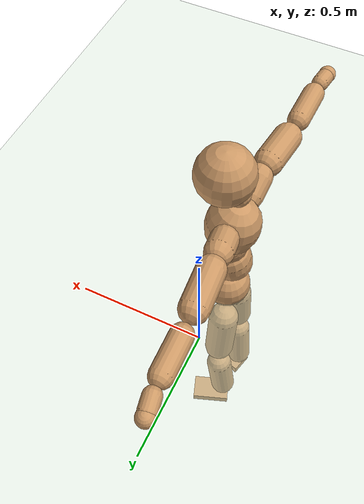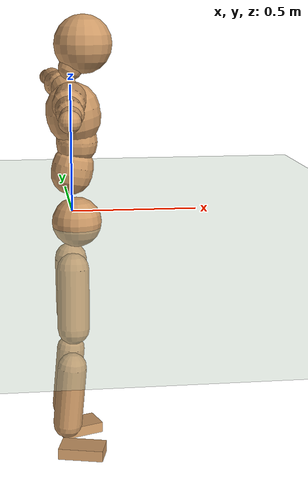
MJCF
<mujoco model="humanoid">
  <compiler coordinate="local" angle="radian"/>
  <default>
    <joint damping="0.0" armature="0.01" stiffness="0.0" limited="true"/>
    <geom conaffinity="1" condim="3" contype="7" margin="0.001" rgba="0.8 0.6 .4 1"/>
  </default>
  <asset>
    <texture type="skybox" builtin="gradient" rgb1=".4 .5 .6" rgb2="0 0 0" width="100" height="100"/>
    <texture builtin="flat" height="1278" mark="cross" markrgb="1 1 1" name="texgeom" random="0.01" rgb1="0.8 0.6 0.4" rgb2="0.8 0.6 0.4" type="cube" width="127"/>
    <texture builtin="checker" height="100" name="texplane" rgb1="0 0 0" rgb2="0.8 0.8 0.8" type="2d" width="100"/>
    <material name="MatPlane" reflectance="0.5" shininess="1" specular="1" texrepeat="60 60" texture="texplane"/>
    <material name="geom" texture="texgeom" texuniform="true"/>
  </asset>
  <worldbody>
    <light cutoff="100" diffuse="1 1 1" dir="-0 0 -1.3" directional="true" exponent="1" pos="0 0 1.3" specular=".1 .1 .1"/>
    <geom conaffinity="1" condim="3" name="floor" pos="0 0 0" rgba="0.8 0.9 0.8 1" size="100 100 .2" type="plane" material="MatPlane"/>
    <body name="Pelvis" pos="0.0003 -0.2577 0.017">
      <freejoint name="Pelvis"/>
      <geom type="sphere" contype="1" conaffinity="1" density="500" size="0.0931" pos="0.0000 0.0000 0.0000" name="Pelvis"/>
      <body name="L_Hip" pos="-0.022 0.0583 -0.0827">
        <joint name="L_Hip_x" type="hinge" pos="0 0 0" axis="1 0 0" stiffness="800" damping="80" armature="0.02" range="-180.0000 180.0000"/>
        <joint name="L_Hip_y" type="hinge" pos="0 0 0" axis="0 1 0" stiffness="800" damping="80" armature="0.02" range="-180.0000 180.0000"/>
        <joint name="L_Hip_z" type="hinge" pos="0 0 0" axis="0 0 1" stiffness="800" damping="80" armature="0.02" range="-180.0000 180.0000"/>
        <geom type="capsule" contype="1" conaffinity="1" density="500" fromto="0.0011 0.0086 -0.0750 0.0044 0.0345 -0.2999" size="0.0605" name="L_Hip"/>
        <body name="L_Knee" pos="0.0055 0.0431 -0.3749">
          <joint name="L_Knee_x" type="hinge" pos="0 0 0" axis="1 0 0" stiffness="800" damping="80" armature="0.02" range="-180.0000 180.0000"/>
          <joint name="L_Knee_y" type="hinge" pos="0 0 0" axis="0 1 0" stiffness="800" damping="80" armature="0.02" range="-180.0000 180.0000"/>
          <joint name="L_Knee_z" type="hinge" pos="0 0 0" axis="0 0 1" stiffness="800" damping="80" armature="0.02" range="-180.0000 180.0000"/>
          <geom type="capsule" contype="1" conaffinity="1" density="500" fromto="-0.0074 -0.0026 -0.0789 -0.0295 -0.0103 -0.3155" size="0.0544" name="L_Knee"/>
          <body name="L_Ankle" pos="-0.0369 -0.0129 -0.3944">
            <joint name="L_Ankle_x" type="hinge" pos="0 0 0" axis="1 0 0" stiffness="800" damping="80" armature="0.02" range="-180.0000 180.0000"/>
            <joint name="L_Ankle_y" type="hinge" pos="0 0 0" axis="0 1 0" stiffness="800" damping="80" armature="0.02" range="-180.0000 180.0000"/>
            <joint name="L_Ankle_z" type="hinge" pos="0 0 0" axis="0 0 1" stiffness="800" damping="80" armature="0.02" range="-180.0000 180.0000"/>
            <geom type="box" contype="1" conaffinity="1" density="500" pos="0.0583 0.0211 -0.0289" size="0.0827 0.0514 0.0208" quat="0.9850 0.0000 0.0000 0.1726" name="L_Ankle"/>
            <body name="L_Toe" pos="0.1166 0.0422 -0.0577">
              <joint name="L_Toe_x" type="hinge" pos="0 0 0" axis="1 0 0" stiffness="500" damping="50" armature="0.02" range="-180.0000 180.0000"/>
              <joint name="L_Toe_y" type="hinge" pos="0 0 0" axis="0 1 0" stiffness="500" damping="50" armature="0.02" range="-180.0000 180.0000"/>
              <joint name="L_Toe_z" type="hinge" pos="0 0 0" axis="0 0 1" stiffness="500" damping="50" armature="0.02" range="-180.0000 180.0000"/>
              <geom type="box" contype="1" conaffinity="1" density="500" pos="0.0000 0.0000 0.0297" size="0.001 0.0024 0.0011" quat="0.9842 0.0000 0.0000 0.1773" name="L_Toe"/>
            </body>
          </body>
        </body>
      </body>
      <body name="R_Hip" pos="-0.0198 -0.0605 -0.0896">
        <joint name="R_Hip_x" type="hinge" pos="0 0 0" axis="1 0 0" stiffness="800" damping="80" armature="0.02" range="-180.0000 180.0000"/>
        <joint name="R_Hip_y" type="hinge" pos="0 0 0" axis="0 1 0" stiffness="800" damping="80" armature="0.02" range="-180.0000 180.0000"/>
        <joint name="R_Hip_z" type="hinge" pos="0 0 0" axis="0 0 1" stiffness="800" damping="80" armature="0.02" range="-180.0000 180.0000"/>
        <geom type="capsule" contype="1" conaffinity="1" density="500" fromto="-0.0009 -0.0086 -0.0743 -0.0037 -0.0346 -0.2972" size="0.06" name="R_Hip"/>
        <body name="R_Knee" pos="-0.0046 -0.0432 -0.3715">
          <joint name="R_Knee_x" type="hinge" pos="0 0 0" axis="1 0 0" stiffness="800" damping="80" armature="0.02" range="-180.0000 180.0000"/>
          <joint name="R_Knee_y" type="hinge" pos="0 0 0" axis="0 1 0" stiffness="800" damping="80" armature="0.02" range="-180.0000 180.0000"/>
          <joint name="R_Knee_z" type="hinge" pos="0 0 0" axis="0 0 1" stiffness="800" damping="80" armature="0.02" range="-180.0000 180.0000"/>
          <geom type="capsule" contype="1" conaffinity="1" density="500" fromto="-0.0067 0.0035 -0.0779 -0.0268 0.0141 -0.3117" size="0.0548" name="R_Knee"/>
          <body name="R_Ankle" pos="-0.0335 0.0176 -0.3896">
            <joint name="R_Ankle_x" type="hinge" pos="0 0 0" axis="1 0 0" stiffness="800" damping="80" armature="0.02" range="-180.0000 180.0000"/>
            <joint name="R_Ankle_y" type="hinge" pos="0 0 0" axis="0 1 0" stiffness="800" damping="80" armature="0.02" range="-180.0000 180.0000"/>
            <joint name="R_Ankle_z" type="hinge" pos="0 0 0" axis="0 0 1" stiffness="800" damping="80" armature="0.02" range="-180.0000 180.0000"/>
            <geom type="box" contype="1" conaffinity="1" density="500" pos="0.0621 -0.0161 -0.0307" size="0.086 0.0501 0.0216" quat="0.9920 0.0000 0.0000 -0.1265" name="R_Ankle"/>
            <body name="R_Toe" pos="0.1241 -0.0322 -0.0613">
              <joint name="R_Toe_x" type="hinge" pos="0 0 0" axis="1 0 0" stiffness="500" damping="50" armature="0.02" range="-180.0000 180.0000"/>
              <joint name="R_Toe_y" type="hinge" pos="0 0 0" axis="0 1 0" stiffness="500" damping="50" armature="0.02" range="-180.0000 180.0000"/>
              <joint name="R_Toe_z" type="hinge" pos="0 0 0" axis="0 0 1" stiffness="500" damping="50" armature="0.02" range="-180.0000 180.0000"/>
              <geom type="box" contype="1" conaffinity="1" density="500" pos="0.0000 0.0000 0.0323" size="0.001 0.0025 0.0012" quat="0.9931 0.0000 0.0000 -0.1171" name="R_Toe"/>
            </body>
          </body>
        </body>
      </body>
      <body name="Torso" pos="-0.0304 0.0038 0.1225">
        <joint name="Torso_x" type="hinge" pos="0 0 0" axis="1 0 0" stiffness="1000" damping="100" armature="0.02" range="-180.0000 180.0000"/>
        <joint name="Torso_y" type="hinge" pos="0 0 0" axis="0 1 0" stiffness="1000" damping="100" armature="0.02" range="-180.0000 180.0000"/>
        <joint name="Torso_z" type="hinge" pos="0 0 0" axis="0 0 1" stiffness="1000" damping="100" armature="0.02" range="-180.0000 180.0000"/>
        <geom type="capsule" contype="1" conaffinity="1" density="500" fromto="0.0195 0.0029 0.0881 0.0130 0.0019 0.0587" size="0.0771" name="Torso"/>
        <body name="Spine" pos="0.0324 0.0048 0.1468">
          <joint name="Spine_x" type="hinge" pos="0 0 0" axis="1 0 0" stiffness="1000" damping="100" armature="0.02" range="-180.0000 180.0000"/>
          <joint name="Spine_y" type="hinge" pos="0 0 0" axis="0 1 0" stiffness="1000" damping="100" armature="0.02" range="-180.0000 180.0000"/>
          <joint name="Spine_z" type="hinge" pos="0 0 0" axis="0 0 1" stiffness="1000" damping="100" armature="0.02" range="-180.0000 180.0000"/>
          <geom type="capsule" contype="1" conaffinity="1" density="500" fromto="0.0017 -0.0016 0.0358 0.0012 -0.0010 0.0239" size="0.0763" name="Spine"/>
          <body name="Chest" pos="0.0029 -0.0026 0.0597">
            <joint name="Chest_x" type="hinge" pos="0 0 0" axis="1 0 0" stiffness="1000" damping="100" armature="0.02" range="-180.0000 180.0000"/>
            <joint name="Chest_y" type="hinge" pos="0 0 0" axis="0 1 0" stiffness="1000" damping="100" armature="0.02" range="-180.0000 180.0000"/>
            <joint name="Chest_z" type="hinge" pos="0 0 0" axis="0 0 1" stiffness="1000" damping="100" armature="0.02" range="-180.0000 180.0000"/>
            <geom type="capsule" contype="1" conaffinity="1" density="500" fromto="-0.0152 -0.0057 0.0890 -0.0101 -0.0038 0.0593" size="0.0995" name="Chest"/>
            <body name="Neck" pos="-0.0323 -0.014 0.2193">
              <joint name="Neck_x" type="hinge" pos="0 0 0" axis="1 0 0" stiffness="500" damping="50" armature="0.02" range="-180.0000 180.0000"/>
              <joint name="Neck_y" type="hinge" pos="0 0 0" axis="0 1 0" stiffness="500" damping="50" armature="0.02" range="-180.0000 180.0000"/>
              <joint name="Neck_z" type="hinge" pos="0 0 0" axis="0 0 1" stiffness="500" damping="50" armature="0.02" range="-180.0000 180.0000"/>
              <geom type="capsule" contype="1" conaffinity="1" density="500" fromto="0.0114 0.0019 0.0206 0.0457 0.0077 0.0822" size="0.0452" name="Neck"/>
              <body name="Head" pos="0.0571 0.0096 0.1028">
                <joint name="Head_x" type="hinge" pos="0 0 0" axis="1 0 0" stiffness="500" damping="50" armature="0.02" range="-180.0000 180.0000"/>
                <joint name="Head_y" type="hinge" pos="0 0 0" axis="0 1 0" stiffness="500" damping="50" armature="0.02" range="-180.0000 180.0000"/>
                <joint name="Head_z" type="hinge" pos="0 0 0" axis="0 0 1" stiffness="500" damping="50" armature="0.02" range="-180.0000 180.0000"/>
                <geom type="sphere" contype="1" conaffinity="1" density="500" size="0.1059" pos="0.0000 0.0000 0.0000" name="Head"/>
              </body>
            </body>
            <body name="L_Thorax" pos="-0.0195 0.0709 0.1129">
              <joint name="L_Thorax_x" type="hinge" pos="0 0 0" axis="1 0 0" stiffness="500" damping="50" armature="0.02" range="-180.0000 180.0000"/>
              <joint name="L_Thorax_y" type="hinge" pos="0 0 0" axis="0 1 0" stiffness="500" damping="50" armature="0.02" range="-180.0000 180.0000"/>
              <joint name="L_Thorax_z" type="hinge" pos="0 0 0" axis="0 0 1" stiffness="500" damping="50" armature="0.02" range="-180.0000 180.0000"/>
              <geom type="capsule" contype="1" conaffinity="1" density="500" fromto="-0.0038 0.0242 0.0090 -0.0150 0.0969 0.0358" size="0.0511" name="L_Thorax"/>
              <body name="L_Shoulder" pos="-0.0188 0.1212 0.0448">
                <joint name="L_Shoulder_x" type="hinge" pos="0 0 0" axis="1 0 0" stiffness="500" damping="50" armature="0.02" range="-720.0000 720.0000"/>
                <joint name="L_Shoulder_y" type="hinge" pos="0 0 0" axis="0 1 0" stiffness="500" damping="50" armature="0.02" range="-720.0000 720.0000"/>
                <joint name="L_Shoulder_z" type="hinge" pos="0 0 0" axis="0 0 1" stiffness="500" damping="50" armature="0.02" range="-720.0000 720.0000"/>
                <geom type="capsule" contype="1" conaffinity="1" density="500" fromto="-0.0032 0.0484 -0.0029 -0.0129 0.1936 -0.0114" size="0.0525" name="L_Shoulder"/>
                <body name="L_Elbow" pos="-0.0162 0.242 -0.0143">
                  <joint name="L_Elbow_x" type="hinge" pos="0 0 0" axis="1 0 0" stiffness="500" damping="50" armature="0.02" range="-720.0000 720.0000"/>
                  <joint name="L_Elbow_y" type="hinge" pos="0 0 0" axis="0 1 0" stiffness="500" damping="50" armature="0.02" range="-720.0000 720.0000"/>
                  <joint name="L_Elbow_z" type="hinge" pos="0 0 0" axis="0 0 1" stiffness="500" damping="50" armature="0.02" range="-720.0000 720.0000"/>
                  <geom type="capsule" contype="1" conaffinity="1" density="500" fromto="-0.0016 0.0480 0.0020 -0.0066 0.1922 0.0081" size="0.0411" name="L_Elbow"/>
                  <body name="L_Wrist" pos="-0.0082 0.2402 0.0101">
                    <joint name="L_Wrist_x" type="hinge" pos="0 0 0" axis="1 0 0" stiffness="300" damping="30" armature="0.02" range="-180.0000 180.0000"/>
                    <joint name="L_Wrist_y" type="hinge" pos="0 0 0" axis="0 1 0" stiffness="300" damping="30" armature="0.02" range="-180.0000 180.0000"/>
                    <joint name="L_Wrist_z" type="hinge" pos="0 0 0" axis="0 0 1" stiffness="300" damping="30" armature="0.02" range="-180.0000 180.0000"/>
                    <geom type="capsule" contype="1" conaffinity="1" density="500" fromto="-0.0027 0.0156 -0.0020 -0.0110 0.0626 -0.0079" size="0.0314" name="L_Wrist"/>
                    <body name="L_Hand" pos="-0.0137 0.0782 -0.0099">
                      <joint name="L_Hand_x" type="hinge" pos="0 0 0" axis="1 0 0" stiffness="300" damping="30" armature="0.02" range="-180.0000 180.0000"/>
                      <joint name="L_Hand_y" type="hinge" pos="0 0 0" axis="0 1 0" stiffness="300" damping="30" armature="0.02" range="-180.0000 180.0000"/>
                      <joint name="L_Hand_z" type="hinge" pos="0 0 0" axis="0 0 1" stiffness="300" damping="30" armature="0.02" range="-180.0000 180.0000"/>
                      <geom type="sphere" contype="1" conaffinity="1" density="500" size="0.0324" pos="0.0000 0.0000 0.0000" name="L_Hand"/>
                    </body>
                  </body>
                </body>
              </body>
            </body>
            <body name="R_Thorax" pos="-0.0243 -0.0856 0.1128">
              <joint name="R_Thorax_x" type="hinge" pos="0 0 0" axis="1 0 0" stiffness="500" damping="50" armature="0.02" range="-180.0000 180.0000"/>
              <joint name="R_Thorax_y" type="hinge" pos="0 0 0" axis="0 1 0" stiffness="500" damping="50" armature="0.02" range="-180.0000 180.0000"/>
              <joint name="R_Thorax_z" type="hinge" pos="0 0 0" axis="0 0 1" stiffness="500" damping="50" armature="0.02" range="-180.0000 180.0000"/>
              <geom type="capsule" contype="1" conaffinity="1" density="500" fromto="-0.0017 -0.0228 0.0093 -0.0066 -0.0912 0.0374" size="0.0517" name="R_Thorax"/>
              <body name="R_Shoulder" pos="-0.0083 -0.114 0.0467">
                <joint name="R_Shoulder_x" type="hinge" pos="0 0 0" axis="1 0 0" stiffness="500" damping="50" armature="0.02" range="-720.0000 720.0000"/>
                <joint name="R_Shoulder_y" type="hinge" pos="0 0 0" axis="0 1 0" stiffness="500" damping="50" armature="0.02" range="-720.0000 720.0000"/>
                <joint name="R_Shoulder_z" type="hinge" pos="0 0 0" axis="0 0 1" stiffness="500" damping="50" armature="0.02" range="-720.0000 720.0000"/>
                <geom type="capsule" contype="1" conaffinity="1" density="500" fromto="-0.0051 -0.0492 -0.0028 -0.0204 -0.1966 -0.0111" size="0.054" name="R_Shoulder"/>
                <body name="R_Elbow" pos="-0.0255 -0.2458 -0.0138">
                  <joint name="R_Elbow_x" type="hinge" pos="0 0 0" axis="1 0 0" stiffness="500" damping="50" armature="0.02" range="-720.0000 720.0000"/>
                  <joint name="R_Elbow_y" type="hinge" pos="0 0 0" axis="0 1 0" stiffness="500" damping="50" armature="0.02" range="-720.0000 720.0000"/>
                  <joint name="R_Elbow_z" type="hinge" pos="0 0 0" axis="0 0 1" stiffness="500" damping="50" armature="0.02" range="-720.0000 720.0000"/>
                  <geom type="capsule" contype="1" conaffinity="1" density="500" fromto="-0.0012 -0.0496 0.0011 -0.0047 -0.1982 0.0045" size="0.0424" name="R_Elbow"/>
                  <body name="R_Wrist" pos="-0.0059 -0.2478 0.0057">
                    <joint name="R_Wrist_x" type="hinge" pos="0 0 0" axis="1 0 0" stiffness="300" damping="30" armature="0.02" range="-180.0000 180.0000"/>
                    <joint name="R_Wrist_y" type="hinge" pos="0 0 0" axis="0 1 0" stiffness="300" damping="30" armature="0.02" range="-180.0000 180.0000"/>
                    <joint name="R_Wrist_z" type="hinge" pos="0 0 0" axis="0 0 1" stiffness="300" damping="30" armature="0.02" range="-180.0000 180.0000"/>
                    <geom type="capsule" contype="1" conaffinity="1" density="500" fromto="-0.0018 -0.0164 -0.0016 -0.0072 -0.0655 -0.0063" size="0.0326" name="R_Wrist"/>
                    <body name="R_Hand" pos="-0.009 -0.0818 -0.0078">
                      <joint name="R_Hand_x" type="hinge" pos="0 0 0" axis="1 0 0" stiffness="300" damping="30" armature="0.02" range="-180.0000 180.0000"/>
                      <joint name="R_Hand_y" type="hinge" pos="0 0 0" axis="0 1 0" stiffness="300" damping="30" armature="0.02" range="-180.0000 180.0000"/>
                      <joint name="R_Hand_z" type="hinge" pos="0 0 0" axis="0 0 1" stiffness="300" damping="30" armature="0.02" range="-180.0000 180.0000"/>
                      <geom type="sphere" contype="1" conaffinity="1" density="500" size="0.0335" pos="0.0000 0.0000 0.0000" name="R_Hand"/>
                    </body>
                  </body>
                </body>
              </body>
            </body>
          </body>
        </body>
      </body>
    </body>
  </worldbody>
  <actuator>
    <motor name="L_Hip_x" joint="L_Hip_x" gear="500"/>
    <motor name="L_Hip_y" joint="L_Hip_y" gear="500"/>
    <motor name="L_Hip_z" joint="L_Hip_z" gear="500"/>
    <motor name="L_Knee_x" joint="L_Knee_x" gear="500"/>
    <motor name="L_Knee_y" joint="L_Knee_y" gear="500"/>
    <motor name="L_Knee_z" joint="L_Knee_z" gear="500"/>
    <motor name="L_Ankle_x" joint="L_Ankle_x" gear="500"/>
    <motor name="L_Ankle_y" joint="L_Ankle_y" gear="500"/>
    <motor name="L_Ankle_z" joint="L_Ankle_z" gear="500"/>
    <motor name="L_Toe_x" joint="L_Toe_x" gear="500"/>
    <motor name="L_Toe_y" joint="L_Toe_y" gear="500"/>
    <motor name="L_Toe_z" joint="L_Toe_z" gear="500"/>
    <motor name="R_Hip_x" joint="R_Hip_x" gear="500"/>
    <motor name="R_Hip_y" joint="R_Hip_y" gear="500"/>
    <motor name="R_Hip_z" joint="R_Hip_z" gear="500"/>
    <motor name="R_Knee_x" joint="R_Knee_x" gear="500"/>
    <motor name="R_Knee_y" joint="R_Knee_y" gear="500"/>
    <motor name="R_Knee_z" joint="R_Knee_z" gear="500"/>
    <motor name="R_Ankle_x" joint="R_Ankle_x" gear="500"/>
    <motor name="R_Ankle_y" joint="R_Ankle_y" gear="500"/>
    <motor name="R_Ankle_z" joint="R_Ankle_z" gear="500"/>
    <motor name="R_Toe_x" joint="R_Toe_x" gear="500"/>
    <motor name="R_Toe_y" joint="R_Toe_y" gear="500"/>
    <motor name="R_Toe_z" joint="R_Toe_z" gear="500"/>
    <motor name="Torso_x" joint="Torso_x" gear="500"/>
    <motor name="Torso_y" joint="Torso_y" gear="500"/>
    <motor name="Torso_z" joint="Torso_z" gear="500"/>
    <motor name="Spine_x" joint="Spine_x" gear="500"/>
    <motor name="Spine_y" joint="Spine_y" gear="500"/>
    <motor name="Spine_z" joint="Spine_z" gear="500"/>
    <motor name="Chest_x" joint="Chest_x" gear="500"/>
    <motor name="Chest_y" joint="Chest_y" gear="500"/>
    <motor name="Chest_z" joint="Chest_z" gear="500"/>
    <motor name="Neck_x" joint="Neck_x" gear="500"/>
    <motor name="Neck_y" joint="Neck_y" gear="500"/>
    <motor name="Neck_z" joint="Neck_z" gear="500"/>
    <motor name="Head_x" joint="Head_x" gear="500"/>
    <motor name="Head_y" joint="Head_y" gear="500"/>
    <motor name="Head_z" joint="Head_z" gear="500"/>
    <motor name="L_Thorax_x" joint="L_Thorax_x" gear="500"/>
    <motor name="L_Thorax_y" joint="L_Thorax_y" gear="500"/>
    <motor name="L_Thorax_z" joint="L_Thorax_z" gear="500"/>
    <motor name="L_Shoulder_x" joint="L_Shoulder_x" gear="500"/>
    <motor name="L_Shoulder_y" joint="L_Shoulder_y" gear="500"/>
    <motor name="L_Shoulder_z" joint="L_Shoulder_z" gear="500"/>
    <motor name="L_Elbow_x" joint="L_Elbow_x" gear="500"/>
    <motor name="L_Elbow_y" joint="L_Elbow_y" gear="500"/>
    <motor name="L_Elbow_z" joint="L_Elbow_z" gear="500"/>
    <motor name="L_Wrist_x" joint="L_Wrist_x" gear="500"/>
    <motor name="L_Wrist_y" joint="L_Wrist_y" gear="500"/>
    <motor name="L_Wrist_z" joint="L_Wrist_z" gear="500"/>
    <motor name="L_Hand_x" joint="L_Hand_x" gear="500"/>
    <motor name="L_Hand_y" joint="L_Hand_y" gear="500"/>
    <motor name="L_Hand_z" joint="L_Hand_z" gear="500"/>
    <motor name="R_Thorax_x" joint="R_Thorax_x" gear="500"/>
    <motor name="R_Thorax_y" joint="R_Thorax_y" gear="500"/>
    <motor name="R_Thorax_z" joint="R_Thorax_z" gear="500"/>
    <motor name="R_Shoulder_x" joint="R_Shoulder_x" gear="500"/>
    <motor name="R_Shoulder_y" joint="R_Shoulder_y" gear="500"/>
    <motor name="R_Shoulder_z" joint="R_Shoulder_z" gear="500"/>
    <motor name="R_Elbow_x" joint="R_Elbow_x" gear="500"/>
    <motor name="R_Elbow_y" joint="R_Elbow_y" gear="500"/>
    <motor name="R_Elbow_z" joint="R_Elbow_z" gear="500"/>
    <motor name="R_Wrist_x" joint="R_Wrist_x" gear="500"/>
    <motor name="R_Wrist_y" joint="R_Wrist_y" gear="500"/>
    <motor name="R_Wrist_z" joint="R_Wrist_z" gear="500"/>
    <motor name="R_Hand_x" joint="R_Hand_x" gear="500"/>
    <motor name="R_Hand_y" joint="R_Hand_y" gear="500"/>
    <motor name="R_Hand_z" joint="R_Hand_z" gear="500"/>
  </actuator>
  <contact>
    <exclude body1="Torso" body2="Chest"/>
    <exclude body1="Head" body2="Chest"/>
    <exclude body1="R_Knee" body2="R_Toe"/>
    <exclude body1="R_Knee" body2="L_Ankle"/>
    <exclude body1="R_Knee" body2="L_Toe"/>
    <exclude body1="L_Knee" body2="L_Toe"/>
    <exclude body1="L_Knee" body2="R_Ankle"/>
    <exclude body1="L_Knee" body2="R_Toe"/>
    <exclude body1="L_Shoulder" body2="Chest"/>
    <exclude body1="R_Shoulder" body2="Chest"/>
  </contact>
  <sensor/>
  <size njmax="700" nconmax="700"/>
</mujoco>
